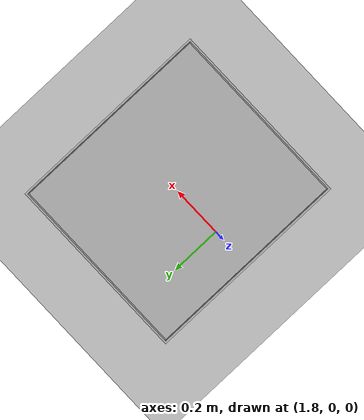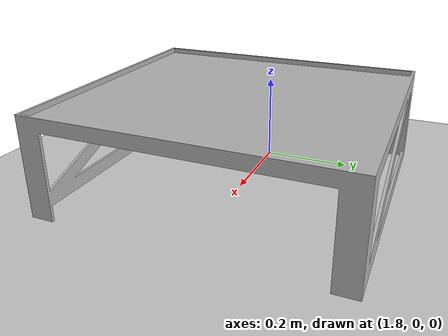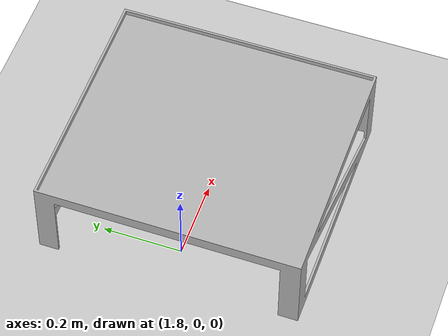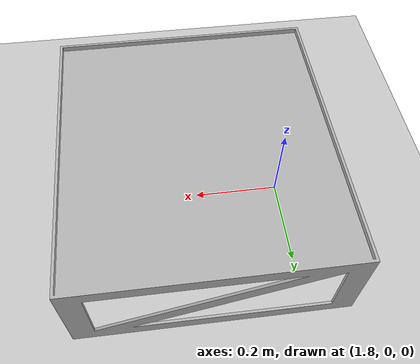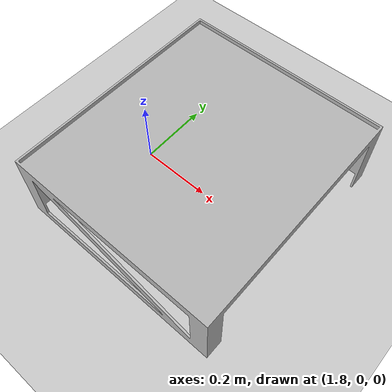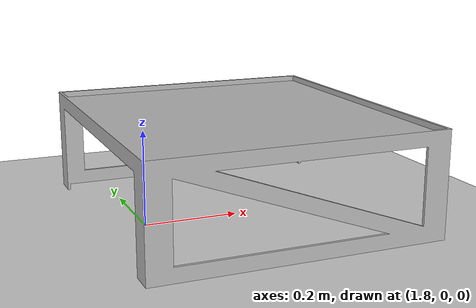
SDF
<?xml version="1.0" ?>
<sdf version="1.5">
  <world name="default">
    <!-- A global light source -->
    <include>
      <uri>model://sun</uri>
    </include>
    <!-- A ground plane -->
    <include>
      <uri>model://ground_plane</uri>
    </include>
    <include>
      <uri>model://platform</uri>
      <name>platform</name>
      <pose>2.0 0.0 0 0 0 0</pose>
    </include>
  </world>
</sdf>

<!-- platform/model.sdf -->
<sdf version="1.5">
  <model name="platform">
    <static>false</static>
    <link name="link">
      <pose>0 0 0.187 0 0 0</pose>
      <inertial>
        <mass>1.966</mass>
        <inertia>
          <ixx>0.1138</ixx>
          <ixy>-0.0005</ixy>
          <ixz>0.0</ixz>
          <iyy>0.0821</iyy>
          <iyz>0.0</iyz>
          <izz>0.1822</izz>
        </inertia>
      </inertial>
      <collision name="collision">
        <geometry>
          <mesh>
            <uri>model://platform/meshes/platform.stl</uri>
            <scale>0.001 0.001 0.001</scale>
          </mesh>
        </geometry>
      </collision>

      <visual name="visual">
        <geometry>
          <mesh>
            <uri>model://platform/meshes/platform.stl</uri>
            <scale>0.001 0.001 0.001</scale>
          </mesh>
        </geometry>
      </visual>
    </link>
  </model>
</sdf>
